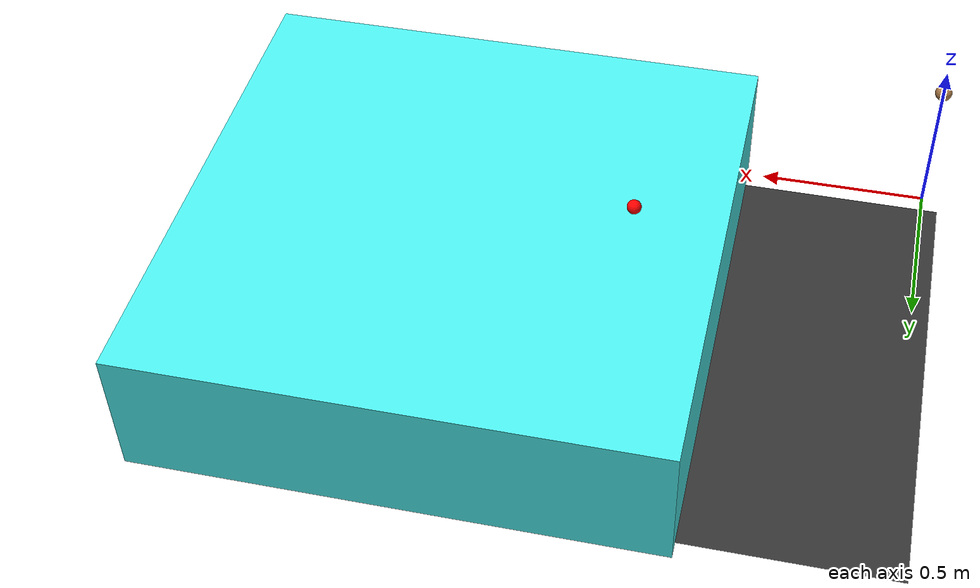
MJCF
<?xml version="1.0" encoding="utf-8"?>
<mujoco>
	<compiler angle="radian" coordinate="local" meshdir="./stls/fetch" texturedir="./textures"></compiler>
	<option timestep="0.002">
		<flag warmstart="enable"></flag>
	</option>

	<asset>
        <texture type="skybox" builtin="gradient" rgb1="0.4 0.5 0.6" rgb2="0.1 0.3 0.4" width="32" height="32"></texture>
        <texture name="texture_block" file="block.png" gridsize="3 4" gridlayout=".U..LFRB.D.."></texture>

        <material name="floor_mat" specular="0" shininess="0.5" reflectance="0" rgba="0.2 0.2 0.2 1"></material>
        <material name="table_mat" specular="0" shininess="0.5" reflectance="0" rgba="0.3 0.93 0.93 1"></material>
        <material name="block_mat" specular="0" shininess="0.5" reflectance="0" rgba="0.2 0.2 0.2 1"></material>
        <material name="puck_mat" specular="0" shininess="0.5" reflectance="0" rgba="0.2 0.2 0.2 1"></material>
        <material name="robot0:geomMat" shininess="0.03" specular="0.4"></material>
        <material name="robot0:gripper_finger_mat" shininess="0.03" specular="0.4" reflectance="0"></material>
        <material name="robot0:gripper_mat" shininess="0.03" specular="0.4" reflectance="0"></material>
        <material name="robot0:arm_mat" shininess="0.03" specular="0.4" reflectance="0"></material>
        <material name="robot0:head_mat" shininess="0.03" specular="0.4" reflectance="0"></material>
        <material name="robot0:torso_mat" shininess="0.03" specular="0.4" reflectance="0"></material>
        <material name="robot0:base_mat" shininess="0.03" specular="0.4" reflectance="0"></material>

        <mesh file="base_link_collision.stl" name="robot0:base_link"></mesh>
        <mesh file="bellows_link_collision.stl" name="robot0:bellows_link"></mesh>
        <mesh file="elbow_flex_link_collision.stl" name="robot0:elbow_flex_link"></mesh>
        <mesh file="estop_link.stl" name="robot0:estop_link"></mesh>
        <mesh file="forearm_roll_link_collision.stl" name="robot0:forearm_roll_link"></mesh>
        <mesh file="gripper_link.stl" name="robot0:gripper_link"></mesh>
        <mesh file="head_pan_link_collision.stl" name="robot0:head_pan_link"></mesh>
        <mesh file="head_tilt_link_collision.stl" name="robot0:head_tilt_link"></mesh>
        <mesh file="l_wheel_link_collision.stl" name="robot0:l_wheel_link"></mesh>
        <mesh file="laser_link.stl" name="robot0:laser_link"></mesh>
        <mesh file="r_wheel_link_collision.stl" name="robot0:r_wheel_link"></mesh>
        <mesh file="torso_lift_link_collision.stl" name="robot0:torso_lift_link"></mesh>
        <mesh file="shoulder_pan_link_collision.stl" name="robot0:shoulder_pan_link"></mesh>
        <mesh file="shoulder_lift_link_collision.stl" name="robot0:shoulder_lift_link"></mesh>
        <mesh file="upperarm_roll_link_collision.stl" name="robot0:upperarm_roll_link"></mesh>
        <mesh file="wrist_flex_link_collision.stl" name="robot0:wrist_flex_link"></mesh>
        <mesh file="wrist_roll_link_collision.stl" name="robot0:wrist_roll_link"></mesh>
        <mesh file="torso_fixed_link.stl" name="robot0:torso_fixed_link"></mesh>
    </asset>

    <default>
        <default class="ball">
            <joint type="hinge" axis="0 0 1" limited="true" range="-40 40" damping=".01"/>
            <motor gear="0.1" ctrlrange="-1 1" ctrllimited="true"/>
            <geom  solref="0.1 0.01"/>
        </default>
    </default>

	<worldbody>
		<geom name="floor0" pos="0.8 0.75 0" size="0.85 0.70 1" type="plane" condim="3" material="floor_mat"></geom>
		<body name="floor0" pos="0.8 0.75 0">
			<site name="target0" pos="0 0 0.5" size="0.02 0.02 0.02" rgba="1 0 0 1" type="sphere"></site>
		</body>

        <body pos="1.3 0.75 0.2" name="table0">
			<geom size="0.75 0.75 0.2" type="box" mass="2000" material="table_mat" condim='3' conaffinity='1' ></geom>
        </body>

        <!-- Robot start -->
        <body childclass="ball" name="torso" pos="0 0 .43">
            <joint name="root_x" type="slide"  pos="0 0 0" axis="1 0 0" />
            <joint name="root_y" type="slide"  pos="0 0 0" axis="0 1 0" />
            <joint axis="0 0 1" limited="false" name="rot" pos="0 0 0" type="hinge"/>
            <geom name="pointmass" type="sphere" size="0.025" rgba=".7 .5 .3 1" mass="0.15"/>
        </body>
        <!-- Robot end -->

		<light directional="true" ambient="0.2 0.2 0.2" diffuse="0.8 0.8 0.8" specular="0.3 0.3 0.3" castshadow="false" pos="0 0 4" dir="0 0 -1" name="light0"></light>
	</worldbody>

    <tendon>
        <fixed name="t1">
            <joint joint="root_x" coef="1"/>
            <joint joint="root_y" coef="0"/>
        </fixed>
        <fixed name="t2">
            <joint joint="root_x" coef="0"/>
            <joint joint="root_y" coef="1"/>
        </fixed>
    </tendon>

    <actuator>
        <motor name="t1" tendon="t1" ctrlrange="-1 1" ctrllimited="true"/>
        <motor name="t2" tendon="t2" ctrlrange="-1 1" ctrllimited="true"/>
    </actuator>
</mujoco>
